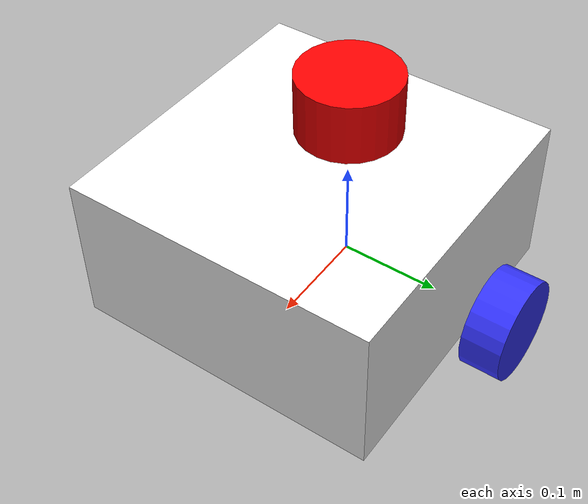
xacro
<?xml version="1.0"?>
<robot xmlns:xacro="http://www.ros.org/wiki/xacro" name="mon_robot">

  <xacro:include filename="$(find mon_robot)/description/inertials.xacro"/>
  <xacro:include filename="$(find mon_robot)/description/chassis.xacro"/>
  <xacro:include filename="$(find mon_robot)/description/lidar.xacro"/>
  <xacro:include filename="$(find mon_robot)/description/imu.xacro"/>
  <xacro:include filename="$(find mon_robot)/description/control.xacro"/>

</robot>

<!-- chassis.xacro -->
<robot xmlns:xacro="http://www.ros.org/wiki/xacro">

  <!-- ========== MATERIAUX ========== -->
  <material name="white">  <color rgba="1 1 1 1"/>     </material>
  <material name="blue">   <color rgba="0.2 0.2 1 1"/> </material>
  <material name="black">  <color rgba="0 0 0 1"/>     </material>
  <material name="red">    <color rgba="1 0 0 1"/>     </material>

  <!-- ========== BASE LINK ========== -->
  <link name="base_link"/>

  <!-- ========== CHASSIS ========== -->
  <joint name="base_to_chassis" type="fixed">
    <origin xyz="-0.1 0 0" rpy="0 0 0"/>
    <parent link="base_link"/>
    <child  link="chassis"/>
  </joint>

  <link name="chassis">
    <visual>
      <origin xyz="0.15 0 0.075"/>
      <geometry><box size="0.3 0.3 0.15"/></geometry>
      <material name="white"/>
    </visual>
    <collision>
      <origin xyz="0.15 0 0.075"/>
      <geometry><box size="0.3 0.3 0.15"/></geometry>
    </collision>
    <xacro:inertial_box mass="0.5" x="0.3" y="0.3" z="0.15"/>
  </link>
  <gazebo reference="chassis">
    <material>Gazebo/White</material>
  </gazebo>

  <!-- ========== ROUE GAUCHE ========== -->
  <joint name="left_wheel_joint" type="continuous">
    <origin xyz="0 0.175 0" rpy="-${pi/2} 0 0"/>
    <parent link="base_link"/>
    <child  link="left_wheel_link"/>
    <axis xyz="0 0 1"/>
  </joint>

  <link name="left_wheel_link">
    <visual>
      <origin xyz="0 0 0" rpy = "0 0 0"/>
      <geometry><cylinder radius="0.05" length="0.04"/></geometry>
      <material name="blue"/>
    </visual>
    <collision>
      <geometry><cylinder radius="0.05" length="0.04"/></geometry>
    </collision>
    <xacro:inertial_cylinder_z mass="0.1" radius="0.05" length="0.04"/>
  </link>
  <gazebo reference="left_wheel_link">
    <material>Gazebo/Blue</material>
  </gazebo>

  <!-- ========== ROUE DROITE ========== -->
  <joint name="right_wheel_joint" type="continuous">
    <origin xyz="0 -0.175 0" rpy="${pi/2} 0 0"/>
    <parent link="base_link"/>
    <child  link="right_wheel_link"/>
    <axis xyz="0 0 -1"/>
  </joint>

  <link name="right_wheel_link">
    <visual>
      <origin xyz="0 0 0" rpy = "0 0 0"/>
      <geometry><cylinder radius="0.05" length="0.04"/></geometry>
      <material name="blue"/>
    </visual>
    <collision>
      <geometry><cylinder radius="0.05" length="0.04"/></geometry>
    </collision>
    <xacro:inertial_cylinder_z mass="0.1" radius="0.05" length="0.04"/>
  </link>
  <gazebo reference="right_wheel_link">
    <material>Gazebo/Blue</material>
  </gazebo>

  <!-- ========== ROUE FOLLE (CASTOR) ========== -->
  <joint name="castor_joint" type="fixed">
    <origin xyz="0.24 0 0" rpy="0 0 0"/>
    <parent link="chassis"/>
    <child  link="castor"/>
  </joint>

  <link name="castor">
    <visual>
      <origin xyz="0 0 0" rpy = "0 0 0"/>
      <geometry><sphere radius="0.05"/></geometry>
      <material name="black"/>
    </visual>
    <collision>
      <geometry><sphere radius="0.05"/></geometry>
    </collision>
    <xacro:inertial_sphere mass="0.1" radius="0.05"/>
  </link>
  <gazebo reference="castor">
    <material>Gazebo/Black</material>
    <mu1 value="0.001"/>
    <mu2 value="0.001"/>
  </gazebo>

</robot>

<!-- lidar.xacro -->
<robot xmlns:xacro="http://www.ros.org/wiki/xacro">

  <!-- ========== LIDAR JOINT ========== -->
  <joint name="lidar_joint" type="fixed">
    <origin xyz="0.1 0 0.160" rpy="0 0 0"/>
    <parent link="chassis"/>
    <child  link="lidar_link"/>
  </joint>

  <!-- ========== LIDAR LINK ========== -->
  <link name="lidar_link">
    <visual>
      <geometry><cylinder radius="0.05" length="0.1"/></geometry>
      <material name="red"/>
    </visual>
    <collision>
      <geometry><cylinder radius="0.05" length="0.1"/></geometry>
    </collision>
    <xacro:inertial_cylinder_z mass="0.1" radius="0.05" length="0.1"/>
  </link>

  <!-- ========== PLUGIN GAZEBO LIDAR ========== -->
  <gazebo reference="lidar_link">
    <material>Gazebo/Red</material>
    <sensor name="laser" type="ray">
      <pose>0 0 0 0 0 0</pose>
      <visualize>false</visualize>
      <update_rate>10</update_rate>
      <ray>
        <scan>
          <horizontal>
            <samples>360</samples>
            <resolution>1</resolution>
            <min_angle>-3.14</min_angle>
            <max_angle>3.14</max_angle>
          </horizontal>
        </scan>
        <range>
          <min>0.3</min>
          <max>12</max>
          <resolution>0.01</resolution>
        </range>
      </ray>
      <plugin name="laser_controller" filename="libgazebo_ros_ray_sensor.so">
        <ros>
          <argument>~/out:=scan</argument>
        </ros>
        <output_type>sensor_msgs/LaserScan</output_type>
        <frame_name>lidar_link</frame_name>
      </plugin>
    </sensor>
  </gazebo>

</robot>
